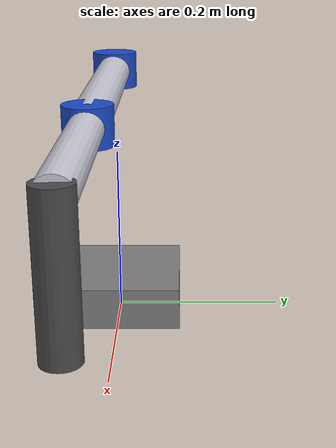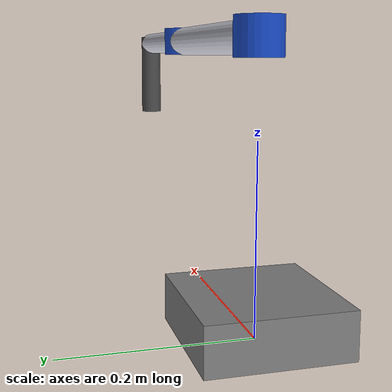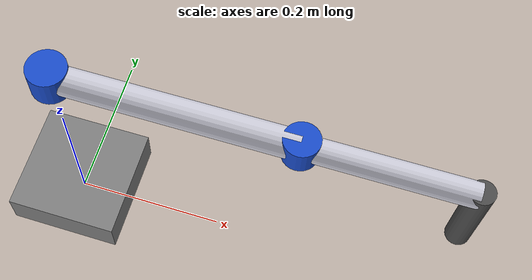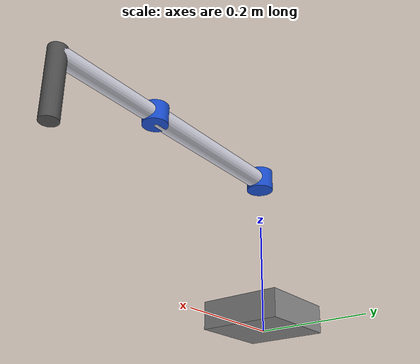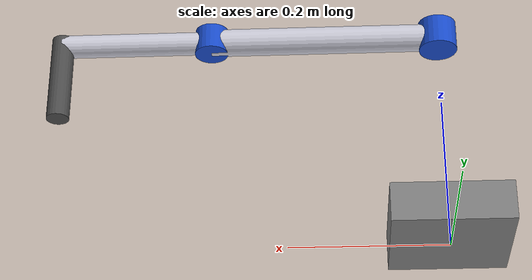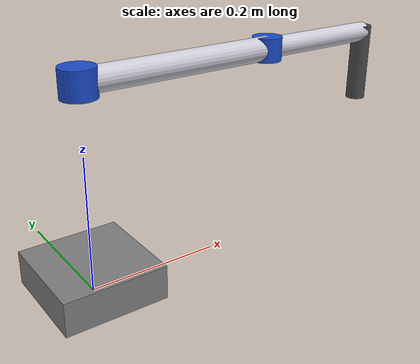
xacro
<?xml version="1.0" ?>
<robot name="scara_robot" xmlns:xacro="http://ros.org/wiki/xacro">

  <xacro:property name="PI"         value="3.14159265358979"/>
  <xacro:property name="D0"         value="0.30"/>  <!-- base column height -->
  <xacro:property name="A1"         value="0.30"/>  <!-- upper arm length -->
  <xacro:property name="A2"         value="0.20"/>  <!-- forearm length -->
  <xacro:property name="D3"         value="-0.05"/> <!-- tool offset below wrist -->
  <xacro:property name="ARM_RADIUS" value="0.018"/>
  <xacro:property name="BASE_SIDE"  value="0.15"/>
  <xacro:property name="BASE_H"     value="0.05"/>
  <xacro:property name="ARM_MASS"   value="1.0"/>
  <xacro:property name="BASE_MASS"  value="5.0"/>

  <!-- ============================================================ world -->
  <link name="world"/>

  <joint name="world_to_base" type="fixed">
    <parent link="world"/>
    <child  link="base_link"/>
    <origin xyz="0 0 0" rpy="0 0 0"/>
  </joint>

  <!-- ============================================================ base -->
  <link name="base_link">
    <inertial>
      <origin xyz="0 0 ${BASE_H/2}" rpy="0 0 0"/>
      <mass value="${BASE_MASS}"/>
      <inertia ixx="0.05" ixy="0" ixz="0" iyy="0.05" iyz="0" izz="0.05"/>
    </inertial>
    <visual>
      <origin xyz="0 0 ${BASE_H/2}" rpy="0 0 0"/>
      <geometry>
        <box size="${BASE_SIDE} ${BASE_SIDE} ${BASE_H}"/>
      </geometry>
      <material name="grey">
        <color rgba="0.5 0.5 0.5 1"/>
      </material>
    </visual>
    <collision>
      <origin xyz="0 0 ${BASE_H/2}" rpy="0 0 0"/>
      <geometry>
        <box size="${BASE_SIDE} ${BASE_SIDE} ${BASE_H}"/>
      </geometry>
    </collision>
  </link>

  <!-- ============================================================ J0: shoulder rotation (revolute Z) -->
  <joint name="JOINT_0_ACT" type="revolute">
    <parent link="base_link"/>
    <child  link="link_1"/>
    <origin xyz="0 0 ${D0}" rpy="0 0 0"/>
    <axis xyz="0 0 1"/>
    <limit lower="${-PI}" upper="${PI}" effort="50" velocity="3.14"/>
    <dynamics damping="0.1" friction="0.1"/>
  </joint>

  <!-- shoulder hub + upper arm -->
  <link name="link_1">
    <inertial>
      <origin xyz="${A1/2} 0 0" rpy="0 ${PI/2} 0"/>
      <mass value="${ARM_MASS}"/>
      <inertia ixx="0.01" ixy="0" ixz="0" iyy="0.01" iyz="0" izz="0.001"/>
    </inertial>
    <!-- hub -->
    <visual>
      <origin xyz="0 0 0" rpy="0 0 0"/>
      <geometry><cylinder radius="0.025" length="0.04"/></geometry>
      <material name="blue"><color rgba="0.1 0.3 0.8 1"/></material>
    </visual>
    <!-- upper arm -->
    <visual>
      <origin xyz="${A1/2} 0 0" rpy="0 ${PI/2} 0"/>
      <geometry><cylinder radius="${ARM_RADIUS}" length="${A1}"/></geometry>
      <material name="silver"><color rgba="0.8 0.8 0.85 1"/></material>
    </visual>
    <collision>
      <origin xyz="${A1/2} 0 0" rpy="0 ${PI/2} 0"/>
      <geometry><cylinder radius="${ARM_RADIUS}" length="${A1}"/></geometry>
    </collision>
  </link>

  <!-- ============================================================ J1: elbow rotation (revolute Z) -->
  <joint name="JOINT_1_ACT" type="revolute">
    <parent link="link_1"/>
    <child  link="link_2"/>
    <origin xyz="${A1} 0 0" rpy="0 0 0"/>
    <axis xyz="0 0 1"/>
    <limit lower="${-PI}" upper="${PI}" effort="30" velocity="3.14"/>
    <dynamics damping="0.1" friction="0.1"/>
  </joint>

  <!-- elbow hub + forearm -->
  <link name="link_2">
    <inertial>
      <origin xyz="${A2/2} 0 0" rpy="0 ${PI/2} 0"/>
      <mass value="${ARM_MASS * 0.6}"/>
      <inertia ixx="0.005" ixy="0" ixz="0" iyy="0.005" iyz="0" izz="0.0005"/>
    </inertial>
    <!-- elbow hub -->
    <visual>
      <origin xyz="0 0 0" rpy="0 0 0"/>
      <geometry><cylinder radius="0.022" length="0.035"/></geometry>
      <material name="blue"><color rgba="0.1 0.3 0.8 1"/></material>
    </visual>
    <!-- forearm -->
    <visual>
      <origin xyz="${A2/2} 0 0" rpy="0 ${PI/2} 0"/>
      <geometry><cylinder radius="${ARM_RADIUS * 0.85}" length="${A2}"/></geometry>
      <material name="silver"><color rgba="0.8 0.8 0.85 1"/></material>
    </visual>
    <collision>
      <origin xyz="${A2/2} 0 0" rpy="0 ${PI/2} 0"/>
      <geometry><cylinder radius="${ARM_RADIUS * 0.85}" length="${A2}"/></geometry>
    </collision>
  </link>

  <!-- ============================================================ J2: Z stroke (prismatic Z) -->
  <joint name="JOINT_2_ACT" type="prismatic">
    <parent link="link_2"/>
    <child  link="link_3"/>
    <origin xyz="${A2} 0 0" rpy="0 0 0"/>
    <axis xyz="0 0 1"/>
    <limit lower="-0.15" upper="0.05" effort="100" velocity="0.5"/>
    <dynamics damping="0.05" friction="0.05"/>
  </joint>

  <!-- spindle / Z-stroke tube -->
  <link name="link_3">
    <inertial>
      <origin xyz="0 0 -0.05" rpy="0 0 0"/>
      <mass value="0.3"/>
      <inertia ixx="0.001" ixy="0" ixz="0" iyy="0.001" iyz="0" izz="0.0001"/>
    </inertial>
    <visual>
      <origin xyz="0 0 -0.05" rpy="0 0 0"/>
      <geometry><cylinder radius="0.015" length="0.12"/></geometry>
      <material name="dark_grey"><color rgba="0.3 0.3 0.3 1"/></material>
    </visual>
    <collision>
      <origin xyz="0 0 -0.05" rpy="0 0 0"/>
      <geometry><cylinder radius="0.015" length="0.12"/></geometry>
    </collision>
  </link>

  <!-- ============================================================ J3: wrist rotation (revolute Z) -->
  <joint name="JOINT_3_ACT" type="revolute">
    <parent link="link_3"/>
    <child  link="link_4"/>
    <origin xyz="0 0 ${D3}" rpy="0 0 0"/>
    <axis xyz="0 0 1"/>
    <limit lower="${-2*PI}" upper="${2*PI}" effort="10" velocity="6.28"/>
    <dynamics damping="0.05" friction="0.05"/>
  </joint>

  <!-- tool / end-effector -->
  <link name="link_4">
    <inertial>
      <origin xyz="0 0 -0.02" rpy="0 0 0"/>
      <mass value="0.1"/>
      <inertia ixx="0.0001" ixy="0" ixz="0" iyy="0.0001" iyz="0" izz="0.0001"/>
    </inertial>
    <visual>
      <origin xyz="0 0 -0.02" rpy="0 0 0"/>
      <geometry><cylinder radius="0.01" length="0.04"/></geometry>
      <material name="orange"><color rgba="1.0 0.5 0.0 1"/></material>
    </visual>
    <collision>
      <origin xyz="0 0 -0.02" rpy="0 0 0"/>
      <geometry><cylinder radius="0.01" length="0.04"/></geometry>
    </collision>
  </link>

</robot>
